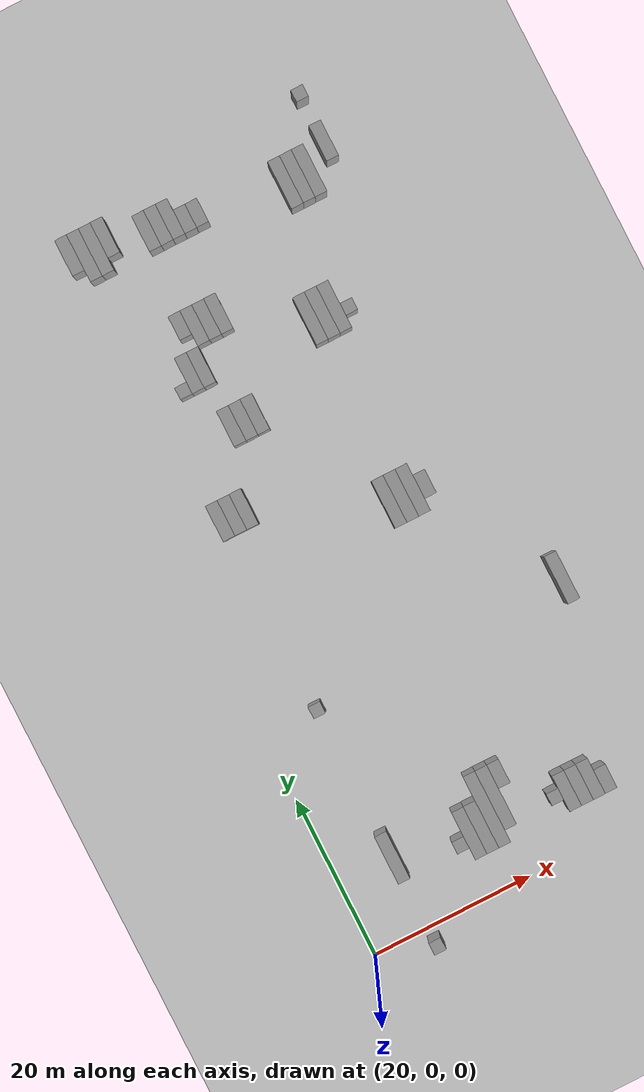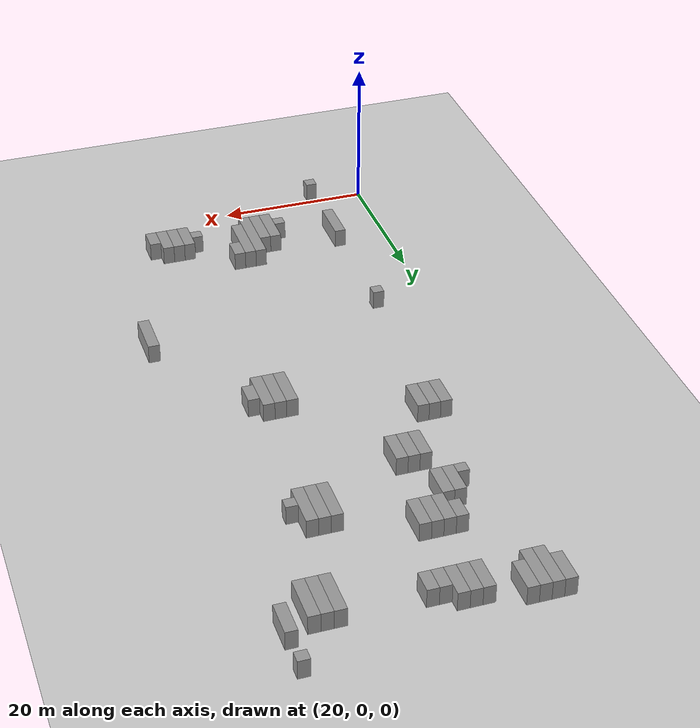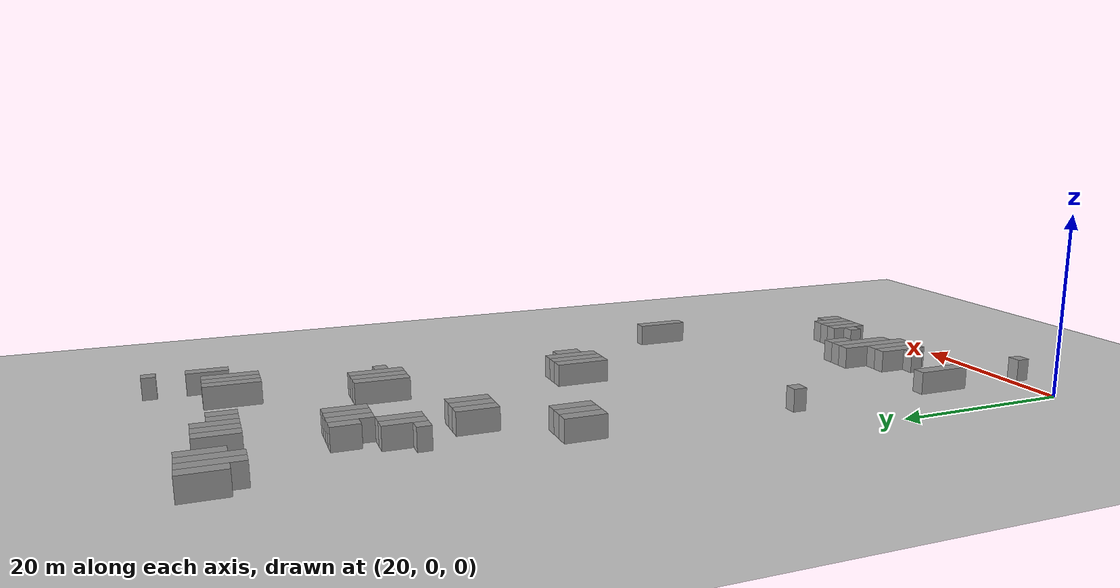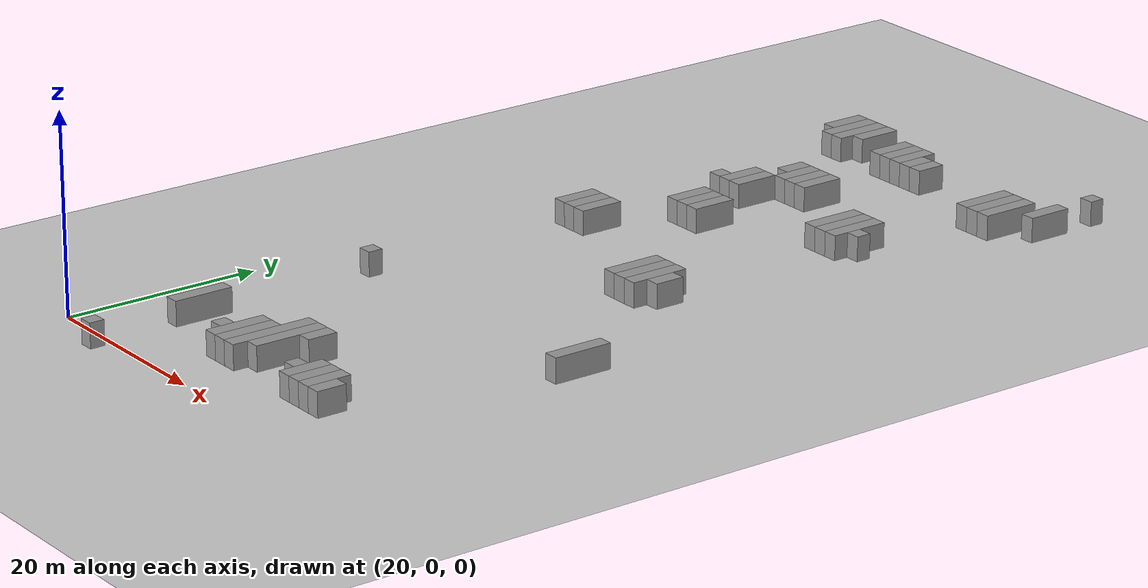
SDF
<sdf version="1.4">
 <world name="1_wall">
  <model name="ground_plane">
   <static>1</static>
   <link name="link">
    <collision name="collision">
     <geometry><plane><normal>0 0 1</normal><size>1000 1000</size></plane></geometry>
     <surface><friction><ode><mu>100</mu><mu2>50</mu2></ode></friction></surface>
    </collision>
    <visual name="visual">
     <cast_shadows>0</cast_shadows>
     <geometry><plane><normal>0 0 1</normal><size>10000 10000</size></plane></geometry>
     <material>
      <script><uri>file://media/materials/scripts/gazebo.material</uri><name>Gazebo/Grey</name></script>
     </material>
    </visual>
    <velocity_decay><linear>0</linear><angular>0</angular></velocity_decay>
   </link>
  </model>
  <model name="Wall_49">
   <static>1</static>
   <link name="Wall_49">
    <collision name="Wall_Collision_49">
     <geometry><box><size>4.5 1.5 2.5</size></box></geometry>
     <pose>0 0 1.25 0 -0 0</pose>
    </collision>
    <visual name="Wall_Visual_49">
     <pose>0 0 1.25 0 -0 0</pose>
     <geometry><box><size>4.5 1.5 2.5</size></box></geometry>
     <material>
      <script><uri>file://media/materials/scripts/gazebo.material</uri><name>Gazebo/Grey</name></script>
     </material>
    </visual>
    <velocity_decay><linear>0</linear><angular>0</angular></velocity_decay>
    <pose>25.5 87.0 0 0 0 1.5707963267948966</pose>
   </link>
  </model>
  <model name="Wall_50">
   <static>1</static>
   <link name="Wall_50">
    <collision name="Wall_Collision_50">
     <geometry><box><size>1.5 1.5 2.5</size></box></geometry>
     <pose>0 0 1.25 0 -0 0</pose>
    </collision>
    <visual name="Wall_Visual_50">
     <pose>0 0 1.25 0 -0 0</pose>
     <geometry><box><size>1.5 1.5 2.5</size></box></geometry>
     <material>
      <script><uri>file://media/materials/scripts/gazebo.material</uri><name>Gazebo/Grey</name></script>
     </material>
    </visual>
    <velocity_decay><linear>0</linear><angular>0</angular></velocity_decay>
    <pose>27.0 -1.5 0 0 0 1.5707963267948966</pose>
   </link>
  </model>
  <model name="Wall_51">
   <static>1</static>
   <link name="Wall_51">
    <collision name="Wall_Collision_51">
     <geometry><box><size>6.0 1.5 2.5</size></box></geometry>
     <pose>0 0 1.25 0 -0 0</pose>
    </collision>
    <visual name="Wall_Visual_51">
     <pose>0 0 1.25 0 -0 0</pose>
     <geometry><box><size>6.0 1.5 2.5</size></box></geometry>
     <material>
      <script><uri>file://media/materials/scripts/gazebo.material</uri><name>Gazebo/Grey</name></script>
     </material>
    </visual>
    <velocity_decay><linear>0</linear><angular>0</angular></velocity_decay>
    <pose>27.0 9.75 0 0 0 1.5707963267948966</pose>
   </link>
  </model>
  <model name="Wall_52">
   <static>1</static>
   <link name="Wall_52">
    <collision name="Wall_Collision_52">
     <geometry><box><size>1.5 1.5 2.5</size></box></geometry>
     <pose>0 0 1.25 0 -0 0</pose>
    </collision>
    <visual name="Wall_Visual_52">
     <pose>0 0 1.25 0 -0 0</pose>
     <geometry><box><size>1.5 1.5 2.5</size></box></geometry>
     <material>
      <script><uri>file://media/materials/scripts/gazebo.material</uri><name>Gazebo/Grey</name></script>
     </material>
    </visual>
    <velocity_decay><linear>0</linear><angular>0</angular></velocity_decay>
    <pose>27.0 28.5 0 0 0 1.5707963267948966</pose>
   </link>
  </model>
  <model name="Wall_53">
   <static>1</static>
   <link name="Wall_53">
    <collision name="Wall_Collision_53">
     <geometry><box><size>4.5 1.5 2.5</size></box></geometry>
     <pose>0 0 1.25 0 -0 0</pose>
    </collision>
    <visual name="Wall_Visual_53">
     <pose>0 0 1.25 0 -0 0</pose>
     <geometry><box><size>4.5 1.5 2.5</size></box></geometry>
     <material>
      <script><uri>file://media/materials/scripts/gazebo.material</uri><name>Gazebo/Grey</name></script>
     </material>
    </visual>
    <velocity_decay><linear>0</linear><angular>0</angular></velocity_decay>
    <pose>27.0 52.5 0 0 0 1.5707963267948966</pose>
   </link>
  </model>
  <model name="Wall_54">
   <static>1</static>
   <link name="Wall_54">
    <collision name="Wall_Collision_54">
     <geometry><box><size>6.0 1.5 2.5</size></box></geometry>
     <pose>0 0 1.25 0 -0 0</pose>
    </collision>
    <visual name="Wall_Visual_54">
     <pose>0 0 1.25 0 -0 0</pose>
     <geometry><box><size>6.0 1.5 2.5</size></box></geometry>
     <material>
      <script><uri>file://media/materials/scripts/gazebo.material</uri><name>Gazebo/Grey</name></script>
     </material>
    </visual>
    <velocity_decay><linear>0</linear><angular>0</angular></velocity_decay>
    <pose>27.0 86.25 0 0 0 1.5707963267948966</pose>
   </link>
  </model>
  <model name="Wall_55">
   <static>1</static>
   <link name="Wall_55">
    <collision name="Wall_Collision_55">
     <geometry><box><size>4.5 1.5 2.5</size></box></geometry>
     <pose>0 0 1.25 0 -0 0</pose>
    </collision>
    <visual name="Wall_Visual_55">
     <pose>0 0 1.25 0 -0 0</pose>
     <geometry><box><size>4.5 1.5 2.5</size></box></geometry>
     <material>
      <script><uri>file://media/materials/scripts/gazebo.material</uri><name>Gazebo/Grey</name></script>
     </material>
    </visual>
    <velocity_decay><linear>0</linear><angular>0</angular></velocity_decay>
    <pose>28.5 52.5 0 0 0 1.5707963267948966</pose>
   </link>
  </model>
  <model name="Wall_56">
   <static>1</static>
   <link name="Wall_56">
    <collision name="Wall_Collision_56">
     <geometry><box><size>6.0 1.5 2.5</size></box></geometry>
     <pose>0 0 1.25 0 -0 0</pose>
    </collision>
    <visual name="Wall_Visual_56">
     <pose>0 0 1.25 0 -0 0</pose>
     <geometry><box><size>6.0 1.5 2.5</size></box></geometry>
     <material>
      <script><uri>file://media/materials/scripts/gazebo.material</uri><name>Gazebo/Grey</name></script>
     </material>
    </visual>
    <velocity_decay><linear>0</linear><angular>0</angular></velocity_decay>
    <pose>28.5 86.25 0 0 0 1.5707963267948966</pose>
   </link>
  </model>
  <model name="Wall_57">
   <static>1</static>
   <link name="Wall_57">
    <collision name="Wall_Collision_57">
     <geometry><box><size>4.5 1.5 2.5</size></box></geometry>
     <pose>0 0 1.25 0 -0 0</pose>
    </collision>
    <visual name="Wall_Visual_57">
     <pose>0 0 1.25 0 -0 0</pose>
     <geometry><box><size>4.5 1.5 2.5</size></box></geometry>
     <material>
      <script><uri>file://media/materials/scripts/gazebo.material</uri><name>Gazebo/Grey</name></script>
     </material>
    </visual>
    <velocity_decay><linear>0</linear><angular>0</angular></velocity_decay>
    <pose>30.0 52.5 0 0 0 1.5707963267948966</pose>
   </link>
  </model>
  <model name="Wall_58">
   <static>1</static>
   <link name="Wall_58">
    <collision name="Wall_Collision_58">
     <geometry><box><size>1.5 1.5 2.5</size></box></geometry>
     <pose>0 0 1.25 0 -0 0</pose>
    </collision>
    <visual name="Wall_Visual_58">
     <pose>0 0 1.25 0 -0 0</pose>
     <geometry><box><size>1.5 1.5 2.5</size></box></geometry>
     <material>
      <script><uri>file://media/materials/scripts/gazebo.material</uri><name>Gazebo/Grey</name></script>
     </material>
    </visual>
    <velocity_decay><linear>0</linear><angular>0</angular></velocity_decay>
    <pose>30.0 67.5 0 0 0 1.5707963267948966</pose>
   </link>
  </model>
  <model name="Wall_59">
   <static>1</static>
   <link name="Wall_59">
    <collision name="Wall_Collision_59">
     <geometry><box><size>4.5 1.5 2.5</size></box></geometry>
     <pose>0 0 1.25 0 -0 0</pose>
    </collision>
    <visual name="Wall_Visual_59">
     <pose>0 0 1.25 0 -0 0</pose>
     <geometry><box><size>4.5 1.5 2.5</size></box></geometry>
     <material>
      <script><uri>file://media/materials/scripts/gazebo.material</uri><name>Gazebo/Grey</name></script>
     </material>
    </visual>
    <velocity_decay><linear>0</linear><angular>0</angular></velocity_decay>
    <pose>30.0 87.0 0 0 0 1.5707963267948966</pose>
   </link>
  </model>
  <model name="Wall_60">
   <static>1</static>
   <link name="Wall_60">
    <collision name="Wall_Collision_60">
     <geometry><box><size>4.5 1.5 2.5</size></box></geometry>
     <pose>0 0 1.25 0 -0 0</pose>
    </collision>
    <visual name="Wall_Visual_60">
     <pose>0 0 1.25 0 -0 0</pose>
     <geometry><box><size>4.5 1.5 2.5</size></box></geometry>
     <material>
      <script><uri>file://media/materials/scripts/gazebo.material</uri><name>Gazebo/Grey</name></script>
     </material>
    </visual>
    <velocity_decay><linear>0</linear><angular>0</angular></velocity_decay>
    <pose>31.5 69.0 0 0 0 1.5707963267948966</pose>
   </link>
  </model>
  <model name="Wall_61">
   <static>1</static>
   <link name="Wall_61">
    <collision name="Wall_Collision_61">
     <geometry><box><size>4.5 1.5 2.5</size></box></geometry>
     <pose>0 0 1.25 0 -0 0</pose>
    </collision>
    <visual name="Wall_Visual_61">
     <pose>0 0 1.25 0 -0 0</pose>
     <geometry><box><size>4.5 1.5 2.5</size></box></geometry>
     <material>
      <script><uri>file://media/materials/scripts/gazebo.material</uri><name>Gazebo/Grey</name></script>
     </material>
    </visual>
    <velocity_decay><linear>0</linear><angular>0</angular></velocity_decay>
    <pose>33.0 61.5 0 0 0 1.5707963267948966</pose>
   </link>
  </model>
  <model name="Wall_62">
   <static>1</static>
   <link name="Wall_62">
    <collision name="Wall_Collision_62">
     <geometry><box><size>4.5 1.5 2.5</size></box></geometry>
     <pose>0 0 1.25 0 -0 0</pose>
    </collision>
    <visual name="Wall_Visual_62">
     <pose>0 0 1.25 0 -0 0</pose>
     <geometry><box><size>4.5 1.5 2.5</size></box></geometry>
     <material>
      <script><uri>file://media/materials/scripts/gazebo.material</uri><name>Gazebo/Grey</name></script>
     </material>
    </visual>
    <velocity_decay><linear>0</linear><angular>0</angular></velocity_decay>
    <pose>33.0 69.0 0 0 0 1.5707963267948966</pose>
   </link>
  </model>
  <model name="Wall_63">
   <static>1</static>
   <link name="Wall_63">
    <collision name="Wall_Collision_63">
     <geometry><box><size>3.0 1.5 2.5</size></box></geometry>
     <pose>0 0 1.25 0 -0 0</pose>
    </collision>
    <visual name="Wall_Visual_63">
     <pose>0 0 1.25 0 -0 0</pose>
     <geometry><box><size>3.0 1.5 2.5</size></box></geometry>
     <material>
      <script><uri>file://media/materials/scripts/gazebo.material</uri><name>Gazebo/Grey</name></script>
     </material>
    </visual>
    <velocity_decay><linear>0</linear><angular>0</angular></velocity_decay>
    <pose>33.0 74.25 0 0 0 1.5707963267948966</pose>
   </link>
  </model>
  <model name="Wall_64">
   <static>1</static>
   <link name="Wall_64">
    <collision name="Wall_Collision_64">
     <geometry><box><size>1.5 1.5 2.5</size></box></geometry>
     <pose>0 0 1.25 0 -0 0</pose>
    </collision>
    <visual name="Wall_Visual_64">
     <pose>0 0 1.25 0 -0 0</pose>
     <geometry><box><size>1.5 1.5 2.5</size></box></geometry>
     <material>
      <script><uri>file://media/materials/scripts/gazebo.material</uri><name>Gazebo/Grey</name></script>
     </material>
    </visual>
    <velocity_decay><linear>0</linear><angular>0</angular></velocity_decay>
    <pose>34.5 7.5 0 0 0 1.5707963267948966</pose>
   </link>
  </model>
  <model name="Wall_65">
   <static>1</static>
   <link name="Wall_65">
    <collision name="Wall_Collision_65">
     <geometry><box><size>4.5 1.5 2.5</size></box></geometry>
     <pose>0 0 1.25 0 -0 0</pose>
    </collision>
    <visual name="Wall_Visual_65">
     <pose>0 0 1.25 0 -0 0</pose>
     <geometry><box><size>4.5 1.5 2.5</size></box></geometry>
     <material>
      <script><uri>file://media/materials/scripts/gazebo.material</uri><name>Gazebo/Grey</name></script>
     </material>
    </visual>
    <velocity_decay><linear>0</linear><angular>0</angular></velocity_decay>
    <pose>34.5 61.5 0 0 0 1.5707963267948966</pose>
   </link>
  </model>
  <model name="Wall_66">
   <static>1</static>
   <link name="Wall_66">
    <collision name="Wall_Collision_66">
     <geometry><box><size>4.5 1.5 2.5</size></box></geometry>
     <pose>0 0 1.25 0 -0 0</pose>
    </collision>
    <visual name="Wall_Visual_66">
     <pose>0 0 1.25 0 -0 0</pose>
     <geometry><box><size>4.5 1.5 2.5</size></box></geometry>
     <material>
      <script><uri>file://media/materials/scripts/gazebo.material</uri><name>Gazebo/Grey</name></script>
     </material>
    </visual>
    <velocity_decay><linear>0</linear><angular>0</angular></velocity_decay>
    <pose>34.5 73.5 0 0 0 1.5707963267948966</pose>
   </link>
  </model>
  <model name="Wall_67">
   <static>1</static>
   <link name="Wall_67">
    <collision name="Wall_Collision_67">
     <geometry><box><size>4.5 1.5 2.5</size></box></geometry>
     <pose>0 0 1.25 0 -0 0</pose>
    </collision>
    <visual name="Wall_Visual_67">
     <pose>0 0 1.25 0 -0 0</pose>
     <geometry><box><size>4.5 1.5 2.5</size></box></geometry>
     <material>
      <script><uri>file://media/materials/scripts/gazebo.material</uri><name>Gazebo/Grey</name></script>
     </material>
    </visual>
    <velocity_decay><linear>0</linear><angular>0</angular></velocity_decay>
    <pose>34.5 85.5 0 0 0 1.5707963267948966</pose>
   </link>
  </model>
  <model name="Wall_68">
   <static>1</static>
   <link name="Wall_68">
    <collision name="Wall_Collision_68">
     <geometry><box><size>6.0 1.5 2.5</size></box></geometry>
     <pose>0 0 1.25 0 -0 0</pose>
    </collision>
    <visual name="Wall_Visual_68">
     <pose>0 0 1.25 0 -0 0</pose>
     <geometry><box><size>6.0 1.5 2.5</size></box></geometry>
     <material>
      <script><uri>file://media/materials/scripts/gazebo.material</uri><name>Gazebo/Grey</name></script>
     </material>
    </visual>
    <velocity_decay><linear>0</linear><angular>0</angular></velocity_decay>
    <pose>36.0 8.25 0 0 0 1.5707963267948966</pose>
   </link>
  </model>
  <model name="Wall_69">
   <static>1</static>
   <link name="Wall_69">
    <collision name="Wall_Collision_69">
     <geometry><box><size>4.5 1.5 2.5</size></box></geometry>
     <pose>0 0 1.25 0 -0 0</pose>
    </collision>
    <visual name="Wall_Visual_69">
     <pose>0 0 1.25 0 -0 0</pose>
     <geometry><box><size>4.5 1.5 2.5</size></box></geometry>
     <material>
      <script><uri>file://media/materials/scripts/gazebo.material</uri><name>Gazebo/Grey</name></script>
     </material>
    </visual>
    <velocity_decay><linear>0</linear><angular>0</angular></velocity_decay>
    <pose>36.0 61.5 0 0 0 1.5707963267948966</pose>
   </link>
  </model>
  <model name="Wall_70">
   <static>1</static>
   <link name="Wall_70">
    <collision name="Wall_Collision_70">
     <geometry><box><size>4.5 1.5 2.5</size></box></geometry>
     <pose>0 0 1.25 0 -0 0</pose>
    </collision>
    <visual name="Wall_Visual_70">
     <pose>0 0 1.25 0 -0 0</pose>
     <geometry><box><size>4.5 1.5 2.5</size></box></geometry>
     <material>
      <script><uri>file://media/materials/scripts/gazebo.material</uri><name>Gazebo/Grey</name></script>
     </material>
    </visual>
    <velocity_decay><linear>0</linear><angular>0</angular></velocity_decay>
    <pose>36.0 73.5 0 0 0 1.5707963267948966</pose>
   </link>
  </model>
  <model name="Wall_71">
   <static>1</static>
   <link name="Wall_71">
    <collision name="Wall_Collision_71">
     <geometry><box><size>4.5 1.5 2.5</size></box></geometry>
     <pose>0 0 1.25 0 -0 0</pose>
    </collision>
    <visual name="Wall_Visual_71">
     <pose>0 0 1.25 0 -0 0</pose>
     <geometry><box><size>4.5 1.5 2.5</size></box></geometry>
     <material>
      <script><uri>file://media/materials/scripts/gazebo.material</uri><name>Gazebo/Grey</name></script>
     </material>
    </visual>
    <velocity_decay><linear>0</linear><angular>0</angular></velocity_decay>
    <pose>36.0 85.5 0 0 0 1.5707963267948966</pose>
   </link>
  </model>
  <model name="Wall_72">
   <static>1</static>
   <link name="Wall_72">
    <collision name="Wall_Collision_72">
     <geometry><box><size>6.0 1.5 2.5</size></box></geometry>
     <pose>0 0 1.25 0 -0 0</pose>
    </collision>
    <visual name="Wall_Visual_72">
     <pose>0 0 1.25 0 -0 0</pose>
     <geometry><box><size>6.0 1.5 2.5</size></box></geometry>
     <material>
      <script><uri>file://media/materials/scripts/gazebo.material</uri><name>Gazebo/Grey</name></script>
     </material>
    </visual>
    <velocity_decay><linear>0</linear><angular>0</angular></velocity_decay>
    <pose>37.5 8.25 0 0 0 1.5707963267948966</pose>
   </link>
  </model>
  <model name="Wall_73">
   <static>1</static>
   <link name="Wall_73">
    <collision name="Wall_Collision_73">
     <geometry><box><size>4.5 1.5 2.5</size></box></geometry>
     <pose>0 0 1.25 0 -0 0</pose>
    </collision>
    <visual name="Wall_Visual_73">
     <pose>0 0 1.25 0 -0 0</pose>
     <geometry><box><size>4.5 1.5 2.5</size></box></geometry>
     <material>
      <script><uri>file://media/materials/scripts/gazebo.material</uri><name>Gazebo/Grey</name></script>
     </material>
    </visual>
    <velocity_decay><linear>0</linear><angular>0</angular></velocity_decay>
    <pose>37.5 73.5 0 0 0 1.5707963267948966</pose>
   </link>
  </model>
  <model name="Wall_74">
   <static>1</static>
   <link name="Wall_74">
    <collision name="Wall_Collision_74">
     <geometry><box><size>4.5 1.5 2.5</size></box></geometry>
     <pose>0 0 1.25 0 -0 0</pose>
    </collision>
    <visual name="Wall_Visual_74">
     <pose>0 0 1.25 0 -0 0</pose>
     <geometry><box><size>4.5 1.5 2.5</size></box></geometry>
     <material>
      <script><uri>file://media/materials/scripts/gazebo.material</uri><name>Gazebo/Grey</name></script>
     </material>
    </visual>
    <velocity_decay><linear>0</linear><angular>0</angular></velocity_decay>
    <pose>37.5 85.5 0 0 0 1.5707963267948966</pose>
   </link>
  </model>
  <model name="Wall_75">
   <static>1</static>
   <link name="Wall_75">
    <collision name="Wall_Collision_75">
     <geometry><box><size>9.0 1.5 2.5</size></box></geometry>
     <pose>0 0 1.25 0 -0 0</pose>
    </collision>
    <visual name="Wall_Visual_75">
     <pose>0 0 1.25 0 -0 0</pose>
     <geometry><box><size>9.0 1.5 2.5</size></box></geometry>
     <material>
      <script><uri>file://media/materials/scripts/gazebo.material</uri><name>Gazebo/Grey</name></script>
     </material>
    </visual>
    <velocity_decay><linear>0</linear><angular>0</angular></velocity_decay>
    <pose>39.0 9.75 0 0 0 1.5707963267948966</pose>
   </link>
  </model>
  <model name="Wall_76">
   <static>1</static>
   <link name="Wall_76">
    <collision name="Wall_Collision_76">
     <geometry><box><size>3.0 1.5 2.5</size></box></geometry>
     <pose>0 0 1.25 0 -0 0</pose>
    </collision>
    <visual name="Wall_Visual_76">
     <pose>0 0 1.25 0 -0 0</pose>
     <geometry><box><size>3.0 1.5 2.5</size></box></geometry>
     <material>
      <script><uri>file://media/materials/scripts/gazebo.material</uri><name>Gazebo/Grey</name></script>
     </material>
    </visual>
    <velocity_decay><linear>0</linear><angular>0</angular></velocity_decay>
    <pose>39.0 84.75 0 0 0 1.5707963267948966</pose>
   </link>
  </model>
  <model name="Wall_77">
   <static>1</static>
   <link name="Wall_77">
    <collision name="Wall_Collision_77">
     <geometry><box><size>7.5 1.5 2.5</size></box></geometry>
     <pose>0 0 1.25 0 -0 0</pose>
    </collision>
    <visual name="Wall_Visual_77">
     <pose>0 0 1.25 0 -0 0</pose>
     <geometry><box><size>7.5 1.5 2.5</size></box></geometry>
     <material>
      <script><uri>file://media/materials/scripts/gazebo.material</uri><name>Gazebo/Grey</name></script>
     </material>
    </visual>
    <velocity_decay><linear>0</linear><angular>0</angular></velocity_decay>
    <pose>40.5 10.5 0 0 0 1.5707963267948966</pose>
   </link>
  </model>
  <model name="Wall_78">
   <static>1</static>
   <link name="Wall_78">
    <collision name="Wall_Collision_78">
     <geometry><box><size>3.0 1.5 2.5</size></box></geometry>
     <pose>0 0 1.25 0 -0 0</pose>
    </collision>
    <visual name="Wall_Visual_78">
     <pose>0 0 1.25 0 -0 0</pose>
     <geometry><box><size>3.0 1.5 2.5</size></box></geometry>
     <material>
      <script><uri>file://media/materials/scripts/gazebo.material</uri><name>Gazebo/Grey</name></script>
     </material>
    </visual>
    <velocity_decay><linear>0</linear><angular>0</angular></velocity_decay>
    <pose>40.5 84.75 0 0 0 1.5707963267948966</pose>
   </link>
  </model>
  <model name="Wall_79">
   <static>1</static>
   <link name="Wall_79">
    <collision name="Wall_Collision_79">
     <geometry><box><size>3.0 1.5 2.5</size></box></geometry>
     <pose>0 0 1.25 0 -0 0</pose>
    </collision>
    <visual name="Wall_Visual_79">
     <pose>0 0 1.25 0 -0 0</pose>
     <geometry><box><size>3.0 1.5 2.5</size></box></geometry>
     <material>
      <script><uri>file://media/materials/scripts/gazebo.material</uri><name>Gazebo/Grey</name></script>
     </material>
    </visual>
    <velocity_decay><linear>0</linear><angular>0</angular></velocity_decay>
    <pose>42.0 12.75 0 0 0 1.5707963267948966</pose>
   </link>
  </model>
  <model name="Wall_80">
   <static>1</static>
   <link name="Wall_80">
    <collision name="Wall_Collision_80">
     <geometry><box><size>6.0 1.5 2.5</size></box></geometry>
     <pose>0 0 1.25 0 -0 0</pose>
    </collision>
    <visual name="Wall_Visual_80">
     <pose>0 0 1.25 0 -0 0</pose>
     <geometry><box><size>6.0 1.5 2.5</size></box></geometry>
     <material>
      <script><uri>file://media/materials/scripts/gazebo.material</uri><name>Gazebo/Grey</name></script>
     </material>
    </visual>
    <velocity_decay><linear>0</linear><angular>0</angular></velocity_decay>
    <pose>45.0 45.75 0 0 0 1.5707963267948966</pose>
   </link>
  </model>
  <model name="Wall_81">
   <static>1</static>
   <link name="Wall_81">
    <collision name="Wall_Collision_81">
     <geometry><box><size>1.5 1.5 2.5</size></box></geometry>
     <pose>0 0 1.25 0 -0 0</pose>
    </collision>
    <visual name="Wall_Visual_81">
     <pose>0 0 1.25 0 -0 0</pose>
     <geometry><box><size>1.5 1.5 2.5</size></box></geometry>
     <material>
      <script><uri>file://media/materials/scripts/gazebo.material</uri><name>Gazebo/Grey</name></script>
     </material>
    </visual>
    <velocity_decay><linear>0</linear><angular>0</angular></velocity_decay>
    <pose>46.5 7.5 0 0 0 1.5707963267948966</pose>
   </link>
  </model>
  <model name="Wall_82">
   <static>1</static>
   <link name="Wall_82">
    <collision name="Wall_Collision_82">
     <geometry><box><size>6.0 1.5 2.5</size></box></geometry>
     <pose>0 0 1.25 0 -0 0</pose>
    </collision>
    <visual name="Wall_Visual_82">
     <pose>0 0 1.25 0 -0 0</pose>
     <geometry><box><size>6.0 1.5 2.5</size></box></geometry>
     <material>
      <script><uri>file://media/materials/scripts/gazebo.material</uri><name>Gazebo/Grey</name></script>
     </material>
    </visual>
    <velocity_decay><linear>0</linear><angular>0</angular></velocity_decay>
    <pose>46.5 45.75 0 0 0 1.5707963267948966</pose>
   </link>
  </model>
  <model name="Wall_83">
   <static>1</static>
   <link name="Wall_83">
    <collision name="Wall_Collision_83">
     <geometry><box><size>6.0 1.5 2.5</size></box></geometry>
     <pose>0 0 1.25 0 -0 0</pose>
    </collision>
    <visual name="Wall_Visual_83">
     <pose>0 0 1.25 0 -0 0</pose>
     <geometry><box><size>6.0 1.5 2.5</size></box></geometry>
     <material>
      <script><uri>file://media/materials/scripts/gazebo.material</uri><name>Gazebo/Grey</name></script>
     </material>
    </visual>
    <velocity_decay><linear>0</linear><angular>0</angular></velocity_decay>
    <pose>46.5 68.25 0 0 0 1.5707963267948966</pose>
   </link>
  </model>
  <model name="Wall_84">
   <static>1</static>
   <link name="Wall_84">
    <collision name="Wall_Collision_84">
     <geometry><box><size>4.5 1.5 2.5</size></box></geometry>
     <pose>0 0 1.25 0 -0 0</pose>
    </collision>
    <visual name="Wall_Visual_84">
     <pose>0 0 1.25 0 -0 0</pose>
     <geometry><box><size>4.5 1.5 2.5</size></box></geometry>
     <material>
      <script><uri>file://media/materials/scripts/gazebo.material</uri><name>Gazebo/Grey</name></script>
     </material>
    </visual>
    <velocity_decay><linear>0</linear><angular>0</angular></velocity_decay>
    <pose>48.0 7.5 0 0 0 1.5707963267948966</pose>
   </link>
  </model>
  <model name="Wall_85">
   <static>1</static>
   <link name="Wall_85">
    <collision name="Wall_Collision_85">
     <geometry><box><size>6.0 1.5 2.5</size></box></geometry>
     <pose>0 0 1.25 0 -0 0</pose>
    </collision>
    <visual name="Wall_Visual_85">
     <pose>0 0 1.25 0 -0 0</pose>
     <geometry><box><size>6.0 1.5 2.5</size></box></geometry>
     <material>
      <script><uri>file://media/materials/scripts/gazebo.material</uri><name>Gazebo/Grey</name></script>
     </material>
    </visual>
    <velocity_decay><linear>0</linear><angular>0</angular></velocity_decay>
    <pose>48.0 45.75 0 0 0 1.5707963267948966</pose>
   </link>
  </model>
  <model name="Wall_86">
   <static>1</static>
   <link name="Wall_86">
    <collision name="Wall_Collision_86">
     <geometry><box><size>6.0 1.5 2.5</size></box></geometry>
     <pose>0 0 1.25 0 -0 0</pose>
    </collision>
    <visual name="Wall_Visual_86">
     <pose>0 0 1.25 0 -0 0</pose>
     <geometry><box><size>6.0 1.5 2.5</size></box></geometry>
     <material>
      <script><uri>file://media/materials/scripts/gazebo.material</uri><name>Gazebo/Grey</name></script>
     </material>
    </visual>
    <velocity_decay><linear>0</linear><angular>0</angular></velocity_decay>
    <pose>48.0 68.25 0 0 0 1.5707963267948966</pose>
   </link>
  </model>
  <model name="Wall_87">
   <static>1</static>
   <link name="Wall_87">
    <collision name="Wall_Collision_87">
     <geometry><box><size>4.5 1.5 2.5</size></box></geometry>
     <pose>0 0 1.25 0 -0 0</pose>
    </collision>
    <visual name="Wall_Visual_87">
     <pose>0 0 1.25 0 -0 0</pose>
     <geometry><box><size>4.5 1.5 2.5</size></box></geometry>
     <material>
      <script><uri>file://media/materials/scripts/gazebo.material</uri><name>Gazebo/Grey</name></script>
     </material>
    </visual>
    <velocity_decay><linear>0</linear><angular>0</angular></velocity_decay>
    <pose>49.5 7.5 0 0 0 1.5707963267948966</pose>
   </link>
  </model>
  <model name="Wall_88">
   <static>1</static>
   <link name="Wall_88">
    <collision name="Wall_Collision_88">
     <geometry><box><size>3.0 1.5 2.5</size></box></geometry>
     <pose>0 0 1.25 0 -0 0</pose>
    </collision>
    <visual name="Wall_Visual_88">
     <pose>0 0 1.25 0 -0 0</pose>
     <geometry><box><size>3.0 1.5 2.5</size></box></geometry>
     <material>
      <script><uri>file://media/materials/scripts/gazebo.material</uri><name>Gazebo/Grey</name></script>
     </material>
    </visual>
    <velocity_decay><linear>0</linear><angular>0</angular></velocity_decay>
    <pose>49.5 45.75 0 0 0 1.5707963267948966</pose>
   </link>
  </model>
  <model name="Wall_89">
   <static>1</static>
   <link name="Wall_89">
    <collision name="Wall_Collision_89">
     <geometry><box><size>6.0 1.5 2.5</size></box></geometry>
     <pose>0 0 1.25 0 -0 0</pose>
    </collision>
    <visual name="Wall_Visual_89">
     <pose>0 0 1.25 0 -0 0</pose>
     <geometry><box><size>6.0 1.5 2.5</size></box></geometry>
     <material>
      <script><uri>file://media/materials/scripts/gazebo.material</uri><name>Gazebo/Grey</name></script>
     </material>
    </visual>
    <velocity_decay><linear>0</linear><angular>0</angular></velocity_decay>
    <pose>49.5 68.25 0 0 0 1.5707963267948966</pose>
   </link>
  </model>
  <model name="Wall_90">
   <static>1</static>
   <link name="Wall_90">
    <collision name="Wall_Collision_90">
     <geometry><box><size>4.5 1.5 2.5</size></box></geometry>
     <pose>0 0 1.25 0 -0 0</pose>
    </collision>
    <visual name="Wall_Visual_90">
     <pose>0 0 1.25 0 -0 0</pose>
     <geometry><box><size>4.5 1.5 2.5</size></box></geometry>
     <material>
      <script><uri>file://media/materials/scripts/gazebo.material</uri><name>Gazebo/Grey</name></script>
     </material>
    </visual>
    <velocity_decay><linear>0</linear><angular>0</angular></velocity_decay>
    <pose>51.0 7.5 0 0 0 1.5707963267948966</pose>
   </link>
  </model>
  <model name="Wall_91">
   <static>1</static>
   <link name="Wall_91">
    <collision name="Wall_Collision_91">
     <geometry><box><size>1.5 1.5 2.5</size></box></geometry>
     <pose>0 0 1.25 0 -0 0</pose>
    </collision>
    <visual name="Wall_Visual_91">
     <pose>0 0 1.25 0 -0 0</pose>
     <geometry><box><size>1.5 1.5 2.5</size></box></geometry>
     <material>
      <script><uri>file://media/materials/scripts/gazebo.material</uri><name>Gazebo/Grey</name></script>
     </material>
    </visual>
    <velocity_decay><linear>0</linear><angular>0</angular></velocity_decay>
    <pose>51.0 67.5 0 0 0 1.5707963267948966</pose>
   </link>
  </model>
  <model name="Wall_92">
   <static>1</static>
   <link name="Wall_92">
    <collision name="Wall_Collision_92">
     <geometry><box><size>6.0 1.5 2.5</size></box></geometry>
     <pose>0 0 1.25 0 -0 0</pose>
    </collision>
    <visual name="Wall_Visual_92">
     <pose>0 0 1.25 0 -0 0</pose>
     <geometry><box><size>6.0 1.5 2.5</size></box></geometry>
     <material>
      <script><uri>file://media/materials/scripts/gazebo.material</uri><name>Gazebo/Grey</name></script>
     </material>
    </visual>
    <velocity_decay><linear>0</linear><angular>0</angular></velocity_decay>
    <pose>51.0 83.25 0 0 0 1.5707963267948966</pose>
   </link>
  </model>
  <model name="Wall_93">
   <static>1</static>
   <link name="Wall_93">
    <collision name="Wall_Collision_93">
     <geometry><box><size>3.0 1.5 2.5</size></box></geometry>
     <pose>0 0 1.25 0 -0 0</pose>
    </collision>
    <visual name="Wall_Visual_93">
     <pose>0 0 1.25 0 -0 0</pose>
     <geometry><box><size>3.0 1.5 2.5</size></box></geometry>
     <material>
      <script><uri>file://media/materials/scripts/gazebo.material</uri><name>Gazebo/Grey</name></script>
     </material>
    </visual>
    <velocity_decay><linear>0</linear><angular>0</angular></velocity_decay>
    <pose>52.5 6.75 0 0 0 1.5707963267948966</pose>
   </link>
  </model>
  <model name="Wall_94">
   <static>1</static>
   <link name="Wall_94">
    <collision name="Wall_Collision_94">
     <geometry><box><size>6.0 1.5 2.5</size></box></geometry>
     <pose>0 0 1.25 0 -0 0</pose>
    </collision>
    <visual name="Wall_Visual_94">
     <pose>0 0 1.25 0 -0 0</pose>
     <geometry><box><size>6.0 1.5 2.5</size></box></geometry>
     <material>
      <script><uri>file://media/materials/scripts/gazebo.material</uri><name>Gazebo/Grey</name></script>
     </material>
    </visual>
    <velocity_decay><linear>0</linear><angular>0</angular></velocity_decay>
    <pose>52.5 83.25 0 0 0 1.5707963267948966</pose>
   </link>
  </model>
  <model name="Wall_95">
   <static>1</static>
   <link name="Wall_95">
    <collision name="Wall_Collision_95">
     <geometry><box><size>6.0 1.5 2.5</size></box></geometry>
     <pose>0 0 1.25 0 -0 0</pose>
    </collision>
    <visual name="Wall_Visual_95">
     <pose>0 0 1.25 0 -0 0</pose>
     <geometry><box><size>6.0 1.5 2.5</size></box></geometry>
     <material>
      <script><uri>file://media/materials/scripts/gazebo.material</uri><name>Gazebo/Grey</name></script>
     </material>
    </visual>
    <velocity_decay><linear>0</linear><angular>0</angular></velocity_decay>
    <pose>54.0 83.25 0 0 0 1.5707963267948966</pose>
   </link>
  </model>
  <model name="Wall_96">
   <static>1</static>
   <link name="Wall_96">
    <collision name="Wall_Collision_96">
     <geometry><box><size>4.5 1.5 2.5</size></box></geometry>
     <pose>0 0 1.25 0 -0 0</pose>
    </collision>
    <visual name="Wall_Visual_96">
     <pose>0 0 1.25 0 -0 0</pose>
     <geometry><box><size>4.5 1.5 2.5</size></box></geometry>
     <material>
      <script><uri>file://media/materials/scripts/gazebo.material</uri><name>Gazebo/Grey</name></script>
     </material>
    </visual>
    <velocity_decay><linear>0</linear><angular>0</angular></velocity_decay>
    <pose>57.0 85.5 0 0 0 1.5707963267948966</pose>
   </link>
  </model>
  <model name="Wall_97">
   <static>1</static>
   <link name="Wall_97">
    <collision name="Wall_Collision_97">
     <geometry><box><size>1.5 1.5 2.5</size></box></geometry>
     <pose>0 0 1.25 0 -0 0</pose>
    </collision>
    <visual name="Wall_Visual_97">
     <pose>0 0 1.25 0 -0 0</pose>
     <geometry><box><size>1.5 1.5 2.5</size></box></geometry>
     <material>
      <script><uri>file://media/materials/scripts/gazebo.material</uri><name>Gazebo/Grey</name></script>
     </material>
    </visual>
    <velocity_decay><linear>0</linear><angular>0</angular></velocity_decay>
    <pose>57.0 91.5 0 0 0 1.5707963267948966</pose>
   </link>
  </model>
  <model name="Wall_98">
   <static>1</static>
   <link name="Wall_98">
    <collision name="Wall_Collision_98">
     <geometry><box><size>6.0 1.5 2.5</size></box></geometry>
     <pose>0 0 1.25 0 -0 0</pose>
    </collision>
    <visual name="Wall_Visual_98">
     <pose>0 0 1.25 0 -0 0</pose>
     <geometry><box><size>6.0 1.5 2.5</size></box></geometry>
     <material>
      <script><uri>file://media/materials/scripts/gazebo.material</uri><name>Gazebo/Grey</name></script>
     </material>
    </visual>
    <velocity_decay><linear>0</linear><angular>0</angular></velocity_decay>
    <pose>58.5 29.25 0 0 0 1.5707963267948966</pose>
   </link>
  </model>
 </world>
</sdf>
